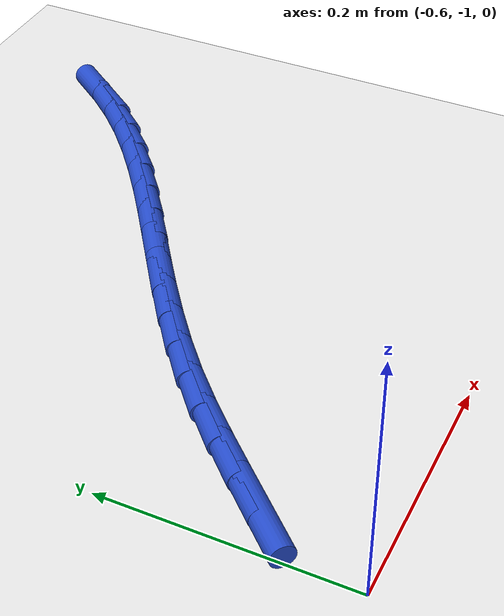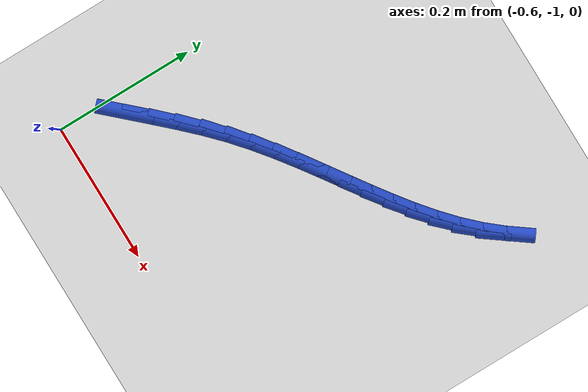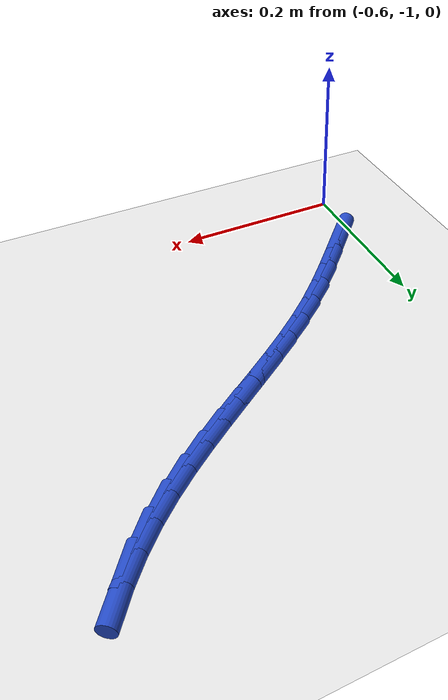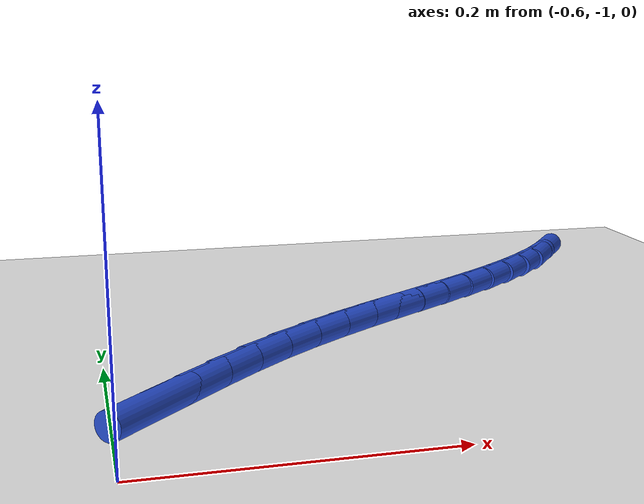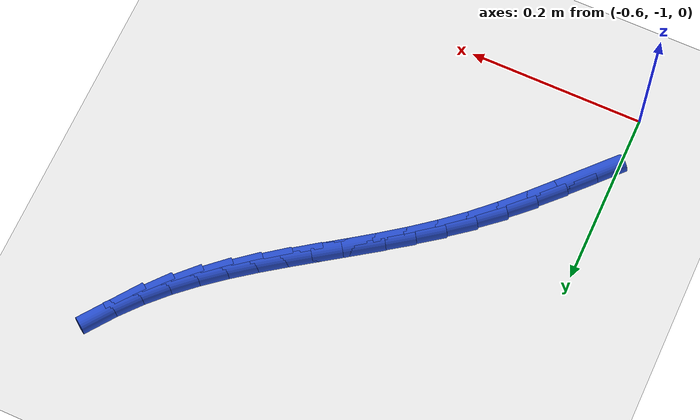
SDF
<sdf version="1.6">
 <world name="default">
  <model name="ground_plane">
   <static>1</static>
   <link name="link">
    <collision name="collision">
     <geometry><plane><normal>0 0 1</normal><size>100 100</size></plane></geometry>
     <surface><friction><ode><mu>100</mu><mu2>50</mu2></ode></friction></surface>
    </collision>
    <visual name="visual">
     <cast_shadows>0</cast_shadows>
     <geometry><plane><normal>0 0 1</normal><size>100 100</size></plane></geometry>
     <material>
      <script><uri>file://media/materials/scripts/gazebo.material</uri><name>Gazebo/WhiteGlow</name></script>
     </material>
    </visual>
   </link>
  </model>
  <model name="line">
   <link name="link_166">
    <pose>-0.5752535738025374 -0.9130801233651058 0.01 0 1.57 0.8237216369225681</pose>
    <collision name="collision">
     <geometry><cylinder><radius>0.01</radius><length>0.08</length></cylinder></geometry>
    </collision>
    <visual name="visual">
     <material>
      <script><name>Gazebo/Blue</name><uri>file://media/materials/scripts/gazebo.material</uri></script>
     </material>
     <geometry><cylinder><radius>0.01</radius><length>0.08</length></cylinder></geometry>
    </visual>
   </link>
   <link name="link_167">
    <pose>-0.5513280371408457 -0.8872467170562299 0.01 0 1.57 0.8187998635435044</pose>
    <collision name="collision">
     <geometry><cylinder><radius>0.01</radius><length>0.08</length></cylinder></geometry>
    </collision>
    <visual name="visual">
     <material>
      <script><name>Gazebo/Blue</name><uri>file://media/materials/scripts/gazebo.material</uri></script>
     </material>
     <geometry><cylinder><radius>0.01</radius><length>0.08</length></cylinder></geometry>
    </visual>
   </link>
   <link name="link_168">
    <pose>-0.5271587750856954 -0.8614064295358415 0.01 0 1.57 0.7974599372213428</pose>
    <collision name="collision">
     <geometry><cylinder><radius>0.01</radius><length>0.08</length></cylinder></geometry>
    </collision>
    <visual name="visual">
     <material>
      <script><name>Gazebo/Blue</name><uri>file://media/materials/scripts/gazebo.material</uri></script>
     </material>
     <geometry><cylinder><radius>0.01</radius><length>0.08</length></cylinder></geometry>
    </visual>
   </link>
   <link name="link_169">
    <pose>-0.5025164610158304 -0.8361623681054994 0.01 0 1.57 0.7590959470026578</pose>
    <collision name="collision">
     <geometry><cylinder><radius>0.01</radius><length>0.08</length></cylinder></geometry>
    </collision>
    <visual name="visual">
     <material>
      <script><name>Gazebo/Blue</name><uri>file://media/materials/scripts/gazebo.material</uri></script>
     </material>
     <geometry><cylinder><radius>0.01</radius><length>0.08</length></cylinder></geometry>
    </visual>
   </link>
   <link name="link_170">
    <pose>-0.47717197090140256 -0.8121172342174608 0.01 0 1.57 0.7095179168876193</pose>
    <collision name="collision">
     <geometry><cylinder><radius>0.01</radius><length>0.08</length></cylinder></geometry>
    </collision>
    <visual name="visual">
     <material>
      <script><name>Gazebo/Blue</name><uri>file://media/materials/scripts/gazebo.material</uri></script>
     </material>
     <geometry><cylinder><radius>0.01</radius><length>0.08</length></cylinder></geometry>
    </visual>
   </link>
   <link name="link_171">
    <pose>-0.4510077376023515 -0.7896502485459829 0.01 0 1.57 0.6669391290813752</pose>
    <collision name="collision">
     <geometry><cylinder><radius>0.01</radius><length>0.08</length></cylinder></geometry>
    </collision>
    <visual name="visual">
     <material>
      <script><name>Gazebo/Blue</name><uri>file://media/materials/scripts/gazebo.material</uri></script>
     </material>
     <geometry><cylinder><radius>0.01</radius><length>0.08</length></cylinder></geometry>
    </visual>
   </link>
   <link name="link_172">
    <pose>-0.42420254825620335 -0.7685469482676519 0.01 0 1.57 0.6349239700168889</pose>
    <collision name="collision">
     <geometry><cylinder><radius>0.01</radius><length>0.08</length></cylinder></geometry>
    </collision>
    <visual name="visual">
     <material>
      <script><name>Gazebo/Blue</name><uri>file://media/materials/scripts/gazebo.material</uri></script>
     </material>
     <geometry><cylinder><radius>0.01</radius><length>0.08</length></cylinder></geometry>
    </visual>
   </link>
   <link name="link_173">
    <pose>-0.396983853523896 -0.7484953834195948 0.01 0 1.57 0.6138648924766256</pose>
    <collision name="collision">
     <geometry><cylinder><radius>0.01</radius><length>0.08</length></cylinder></geometry>
    </collision>
    <visual name="visual">
     <material>
      <script><name>Gazebo/Blue</name><uri>file://media/materials/scripts/gazebo.material</uri></script>
     </material>
     <geometry><cylinder><radius>0.01</radius><length>0.08</length></cylinder></geometry>
    </visual>
   </link>
   <link name="link_174">
    <pose>-0.3695791040663669 -0.7291836040389394 0.01 0 1.57 0.604062940724105</pose>
    <collision name="collision">
     <geometry><cylinder><radius>0.01</radius><length>0.08</length></cylinder></geometry>
    </collision>
    <visual name="visual">
     <material>
      <script><name>Gazebo/Blue</name><uri>file://media/materials/scripts/gazebo.material</uri></script>
     </material>
     <geometry><cylinder><radius>0.01</radius><length>0.08</length></cylinder></geometry>
    </visual>
   </link>
   <link name="link_175">
    <pose>-0.34221575054455405 -0.7102996601628129 0.01 0 1.57 0.605802167791142</pose>
    <collision name="collision">
     <geometry><cylinder><radius>0.01</radius><length>0.08</length></cylinder></geometry>
    </collision>
    <visual name="visual">
     <material>
      <script><name>Gazebo/Blue</name><uri>file://media/materials/scripts/gazebo.material</uri></script>
     </material>
     <geometry><cylinder><radius>0.01</radius><length>0.08</length></cylinder></geometry>
    </visual>
   </link>
   <link name="link_176">
    <pose>-0.31512124361939514 -0.6915316018283433 0.01 0 1.57 0.6193876282497025</pose>
    <collision name="collision">
     <geometry><cylinder><radius>0.01</radius><length>0.08</length></cylinder></geometry>
    </collision>
    <visual name="visual">
     <material>
      <script><name>Gazebo/Blue</name><uri>file://media/materials/scripts/gazebo.material</uri></script>
     </material>
     <geometry><cylinder><radius>0.01</radius><length>0.08</length></cylinder></geometry>
    </visual>
   </link>
   <link name="link_177">
    <pose>-0.28852303395182793 -0.6725674790726572 0.01 0 1.57 0.6451387846689332</pose>
    <collision name="collision">
     <geometry><cylinder><radius>0.01</radius><length>0.08</length></cylinder></geometry>
    </collision>
    <visual name="visual">
     <material>
      <script><name>Gazebo/Blue</name><uri>file://media/materials/scripts/gazebo.material</uri></script>
     </material>
     <geometry><cylinder><radius>0.01</radius><length>0.08</length></cylinder></geometry>
    </visual>
   </link>
   <link name="link_178">
    <pose>-0.26264857220279003 -0.6530953419328825 0.01 0 1.57 0.6833295841846025</pose>
    <collision name="collision">
     <geometry><cylinder><radius>0.01</radius><length>0.08</length></cylinder></geometry>
    </collision>
    <visual name="visual">
     <material>
      <script><name>Gazebo/Blue</name><uri>file://media/materials/scripts/gazebo.material</uri></script>
     </material>
     <geometry><cylinder><radius>0.01</radius><length>0.08</length></cylinder></geometry>
    </visual>
   </link>
   <link name="link_179">
    <pose>-0.23772530903321937 -0.632803240446147 0.01 0 1.57 0.7340669715065179</pose>
    <collision name="collision">
     <geometry><cylinder><radius>0.01</radius><length>0.08</length></cylinder></geometry>
    </collision>
    <visual name="visual">
     <material>
      <script><name>Gazebo/Blue</name><uri>file://media/materials/scripts/gazebo.material</uri></script>
     </material>
     <geometry><cylinder><radius>0.01</radius><length>0.08</length></cylinder></geometry>
    </visual>
   </link>
   <link name="link_180">
    <pose>-0.21398069510405354 -0.6113792246495776 0.01 0 1.57 0.797107609766948</pose>
    <collision name="collision">
     <geometry><cylinder><radius>0.01</radius><length>0.08</length></cylinder></geometry>
    </collision>
    <visual name="visual">
     <material>
      <script><name>Gazebo/Blue</name><uri>file://media/materials/scripts/gazebo.material</uri></script>
     </material>
     <geometry><cylinder><radius>0.01</radius><length>0.08</length></cylinder></geometry>
    </visual>
   </link>
   <link name="link_181">
    <pose>-0.1916421810762304 -0.5885113445803021 0.01 0 1.57 0.8690112220881872</pose>
    <collision name="collision">
     <geometry><cylinder><radius>0.01</radius><length>0.08</length></cylinder></geometry>
    </collision>
    <visual name="visual">
     <material>
      <script><name>Gazebo/Blue</name><uri>file://media/materials/scripts/gazebo.material</uri></script>
     </material>
     <geometry><cylinder><radius>0.01</radius><length>0.08</length></cylinder></geometry>
    </visual>
   </link>
   <link name="link_182">
    <pose>-0.1708900675264694 -0.5639626393816498 0.01 0 1.57 0.9374372607008731</pose>
    <collision name="collision">
     <geometry><cylinder><radius>0.01</radius><length>0.08</length></cylinder></geometry>
    </collision>
    <visual name="visual">
     <material>
      <script><name>Gazebo/Blue</name><uri>file://media/materials/scripts/gazebo.material</uri></script>
     </material>
     <geometry><cylinder><radius>0.01</radius><length>0.08</length></cylinder></geometry>
    </visual>
   </link>
  </model>
 </world>
</sdf>
